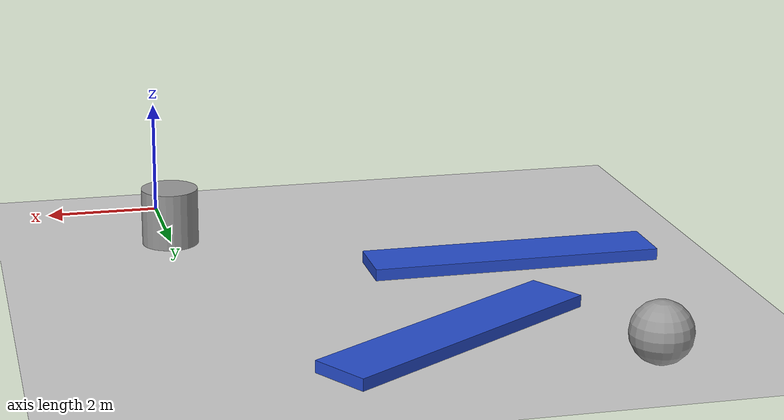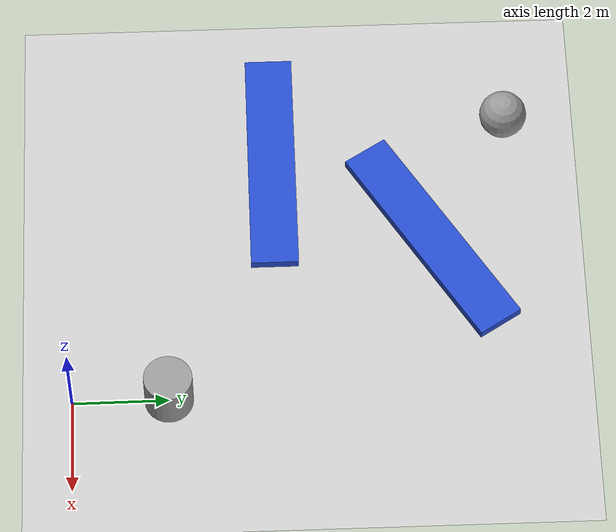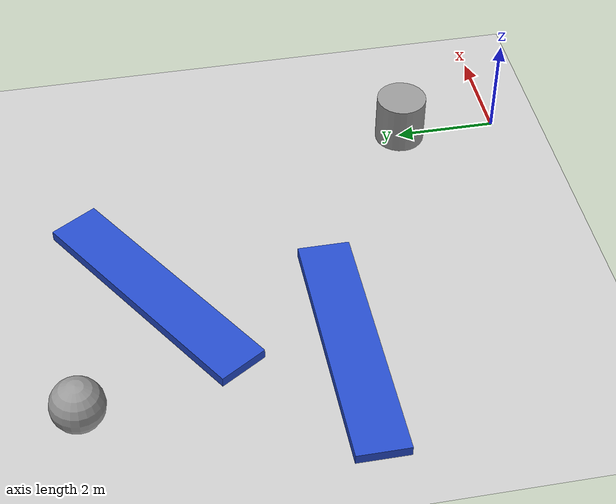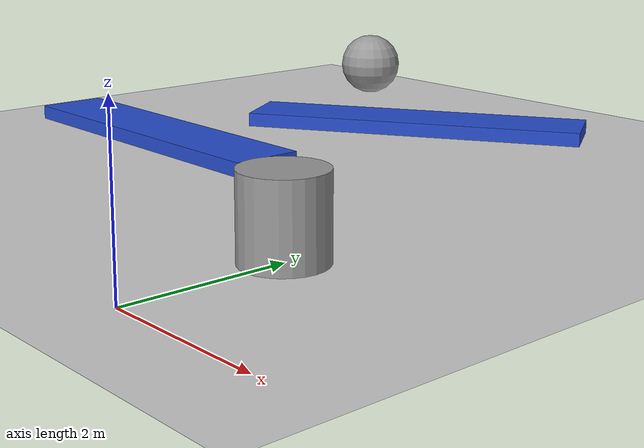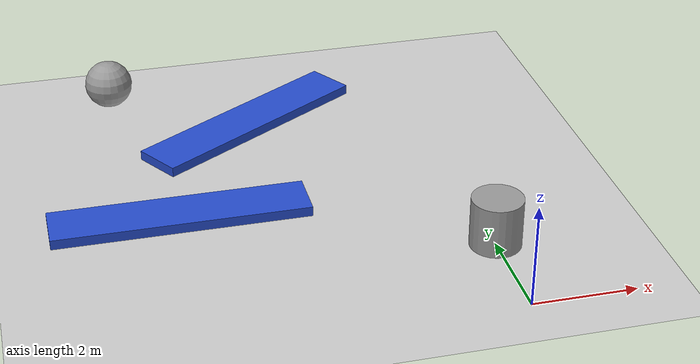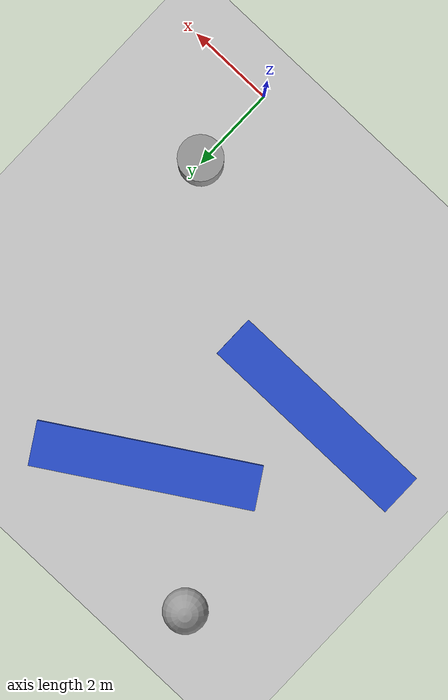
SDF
<sdf version="1.7">
 <world name="default">
  <light name="sun" type="directional">
   <pose>0 0 10 0 -0 0</pose>
   <diffuse>0.8 0.8 0.8 1</diffuse>
   <specular>0.2 0.2 0.2 1</specular>
   <attenuation>
    <range>1000</range>
    <constant>0.9</constant>
    <linear>0.01</linear>
    <quadratic>0.001</quadratic>
   </attenuation>
   <direction>-0.5 0.1 -0.9</direction>
   <spot><inner_angle>0</inner_angle><outer_angle>0</outer_angle><falloff>0</falloff></spot>
  </light>
  <model name="ground_plane">
   <static>1</static>
   <link name="link">
    <collision name="collision">
     <geometry><plane><normal>0 0 1</normal><size>100 100</size></plane></geometry>
     <surface>
      <contact><collide_bitmask>65535</collide_bitmask></contact>
      <friction><ode><mu>100</mu><mu2>50</mu2></ode></friction>
     </surface>
    </collision>
    <visual name="visual">
     <cast_shadows>0</cast_shadows>
     <geometry><plane><normal>0 0 1</normal><size>100 100</size></plane></geometry>
     <material>
      <script><uri>file://media/materials/scripts/gazebo.material</uri><name>Gazebo/Grey</name></script>
     </material>
    </visual>
   </link>
  </model>
  <gravity>0 0 -9.8</gravity>
  <magnetic_field>6e-06 2.3e-05 -4.2e-05</magnetic_field>
  <atmosphere type="adiabatic"/>
  <physics type="ode">
   <max_step_size>0.001</max_step_size>
   <real_time_factor>1</real_time_factor>
   <real_time_update_rate>1000</real_time_update_rate>
  </physics>
  <scene><ambient>0.4 0.4 0.4 1</ambient><background>0.7 0.7 0.7 1</background><shadows>1</shadows></scene>
  <audio><device>default</device></audio>
  <spherical_coordinates>
   <surface_model>EARTH_WGS84</surface_model>
   <latitude_deg>0</latitude_deg>
   <longitude_deg>0</longitude_deg>
   <elevation>0</elevation>
   <heading_deg>0</heading_deg>
  </spherical_coordinates>
  <model name="unit_cylinder">
   <pose>0.001872 1.9923 0.499994 -3e-06 -3e-06 0</pose>
   <link name="link">
    <inertial>
     <mass>1</mass>
     <inertia><ixx>0.145833</ixx><ixy>0</ixy><ixz>0</ixz><iyy>0.145833</iyy><iyz>0</iyz><izz>0.125</izz></inertia>
    </inertial>
    <collision name="collision">
     <geometry><cylinder><radius>0.5</radius><length>1</length></cylinder></geometry>
    </collision>
    <visual name="visual">
     <geometry><cylinder><radius>0.5</radius><length>1</length></cylinder></geometry>
     <material>
      <script><name>Gazebo/Grey</name><uri>file://media/materials/scripts/gazebo.material</uri></script>
     </material>
    </visual>
   </link>
  </model>
  <model name="unit_sphere">
   <pose>-6.37296 9.22691 0.5 0 -0 0</pose>
   <link name="link">
    <inertial>
     <mass>1</mass>
     <inertia><ixx>0.1</ixx><ixy>0</ixy><ixz>0</ixz><iyy>0.1</iyy><iyz>0</iyz><izz>0.1</izz></inertia>
    </inertial>
    <collision name="collision"><geometry><sphere><radius>0.5</radius></sphere></geometry></collision>
    <visual name="visual">
     <geometry><sphere><radius>0.5</radius></sphere></geometry>
     <material>
      <script><name>Gazebo/Grey</name><uri>file://media/materials/scripts/gazebo.material</uri></script>
     </material>
    </visual>
   </link>
  </model>
  <light name="user_spot_light_0" type="spot">
   <pose>-5.96981 8.00571 1 0 -0 0</pose>
   <diffuse>0.5 0.5 0.5 1</diffuse>
   <specular>0.1 0.1 0.1 1</specular>
   <direction>0 0 -1</direction>
   <attenuation>
    <range>20</range>
    <constant>0.5</constant>
    <linear>0.01</linear>
    <quadratic>0.001</quadratic>
   </attenuation>
   <cast_shadows>0</cast_shadows>
   <spot><inner_angle>0.6</inner_angle><outer_angle>1</outer_angle><falloff>1</falloff></spot>
  </light>
  <model name="unit_box_blue">
   <link name="link">
    <inertial>
     <mass>10</mass>
     <inertia><ixx>1.66667</ixx><ixy>0</ixy><ixz>0</ixz><iyy>1.66667</iyy><iyz>0</iyz><izz>1.66667</izz></inertia>
    </inertial>
    <visual name="visual">
     <geometry><box><size>5 1 0.2</size></box></geometry>
     <material>
      <script><name>Gazebo/Blue</name><uri>file://media/materials/scripts/gazebo.material</uri></script>
      <shader type="pixel"><normal_map>__default__</normal_map></shader>
      <ambient>0.3 0.3 0.7 1</ambient>
      <diffuse>0.7 0.7 0.9 1</diffuse>
      <specular>0.01 0.01 0.01 1</specular>
      <emissive>0 0 0 1</emissive>
     </material>
    </visual>
    <collision name="collision">
     <geometry><box><size>5 1 0.2</size></box></geometry>
     <surface>
      <friction>
       <ode><mu>1</mu><mu2>1</mu2><fdir1>0 0 0</fdir1><slip1>0</slip1><slip2>0</slip2></ode>
       <torsional>
        <coefficient>1</coefficient>
        <patch_radius>0</patch_radius>
        <surface_radius>0</surface_radius>
        <use_patch_radius>1</use_patch_radius>
        <ode><slip>0</slip></ode>
       </torsional>
      </friction>
      <bounce><restitution_coefficient>0</restitution_coefficient><threshold>1e+06</threshold></bounce>
      <contact>
       <collide_without_contact>0</collide_without_contact>
       <collide_without_contact_bitmask>1</collide_without_contact_bitmask>
       <collide_bitmask>1</collide_bitmask>
       <ode>
        <soft_cfm>0</soft_cfm>
        <soft_erp>0.2</soft_erp>
        <kp>1e+13</kp>
        <kd>1</kd>
        <max_vel>0.01</max_vel>
        <min_depth>0</min_depth>
       </ode>
       <bullet>
        <split_impulse>1</split_impulse>
        <split_impulse_penetration_threshold>-0.01</split_impulse_penetration_threshold>
        <soft_cfm>0</soft_cfm>
        <soft_erp>0.2</soft_erp>
        <kp>1e+13</kp>
        <kd>1</kd>
       </bullet>
      </contact>
     </surface>
    </collision>
   </link>
   <static>0</static>
   <pose>-3.63375 7.57829 0.099995 -1e-05 -0 0.557674</pose>
  </model>
  <model name="unit_box_blue_clone">
   <link name="link">
    <inertial>
     <mass>10</mass>
     <inertia><ixx>1.66667</ixx><ixy>0</ixy><ixz>0</ixz><iyy>1.66667</iyy><iyz>0</iyz><izz>1.66667</izz></inertia>
    </inertial>
    <visual name="visual">
     <geometry><box><size>5 1 0.2</size></box></geometry>
     <material>
      <script><name>Gazebo/Blue</name><uri>file://media/materials/scripts/gazebo.material</uri></script>
      <shader type="pixel"><normal_map>__default__</normal_map></shader>
      <ambient>0.3 0.3 0.7 1</ambient>
      <diffuse>0.7 0.7 0.9 1</diffuse>
      <specular>0.01 0.01 0.01 1</specular>
      <emissive>0 0 0 1</emissive>
     </material>
    </visual>
    <collision name="collision">
     <geometry><box><size>5 1 0.2</size></box></geometry>
     <surface>
      <friction>
       <ode><mu>1</mu><mu2>1</mu2><fdir1>0 0 0</fdir1><slip1>0</slip1><slip2>0</slip2></ode>
       <torsional>
        <coefficient>1</coefficient>
        <patch_radius>0</patch_radius>
        <surface_radius>0</surface_radius>
        <use_patch_radius>1</use_patch_radius>
        <ode><slip>0</slip></ode>
       </torsional>
      </friction>
      <bounce><restitution_coefficient>0</restitution_coefficient><threshold>1e+06</threshold></bounce>
      <contact>
       <collide_without_contact>0</collide_without_contact>
       <collide_without_contact_bitmask>1</collide_without_contact_bitmask>
       <collide_bitmask>1</collide_bitmask>
       <ode>
        <soft_cfm>0</soft_cfm>
        <soft_erp>0.2</soft_erp>
        <kp>1e+13</kp>
        <kd>1</kd>
        <max_vel>0.01</max_vel>
        <min_depth>0</min_depth>
       </ode>
       <bullet>
        <split_impulse>1</split_impulse>
        <split_impulse_penetration_threshold>-0.01</split_impulse_penetration_threshold>
        <soft_cfm>0</soft_cfm>
        <soft_erp>0.2</soft_erp>
        <kp>1e+13</kp>
        <kd>1</kd>
       </bullet>
      </contact>
     </surface>
    </collision>
   </link>
   <static>0</static>
   <pose>-5.58437 4.25843 0.096925 0 0.00123 0</pose>
  </model>
 </world>
</sdf>
